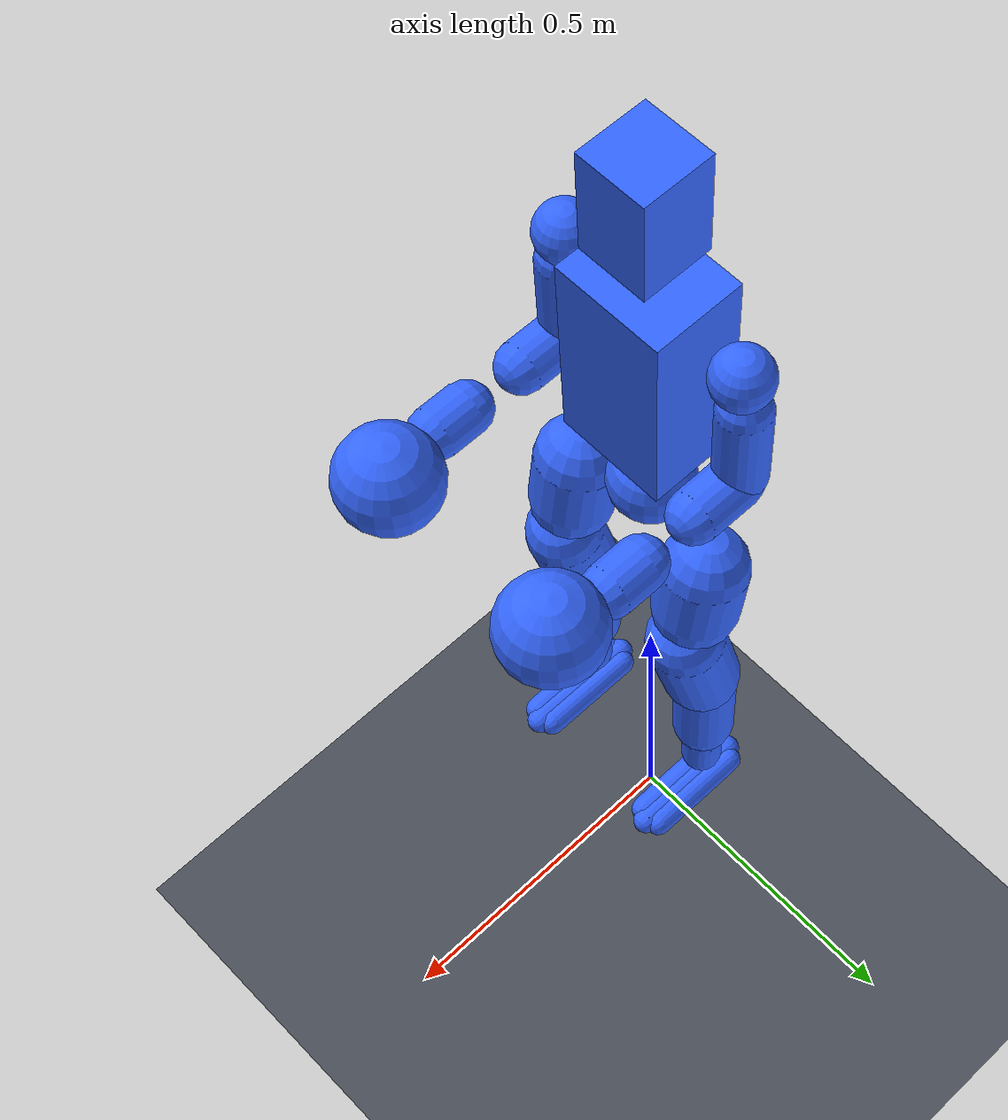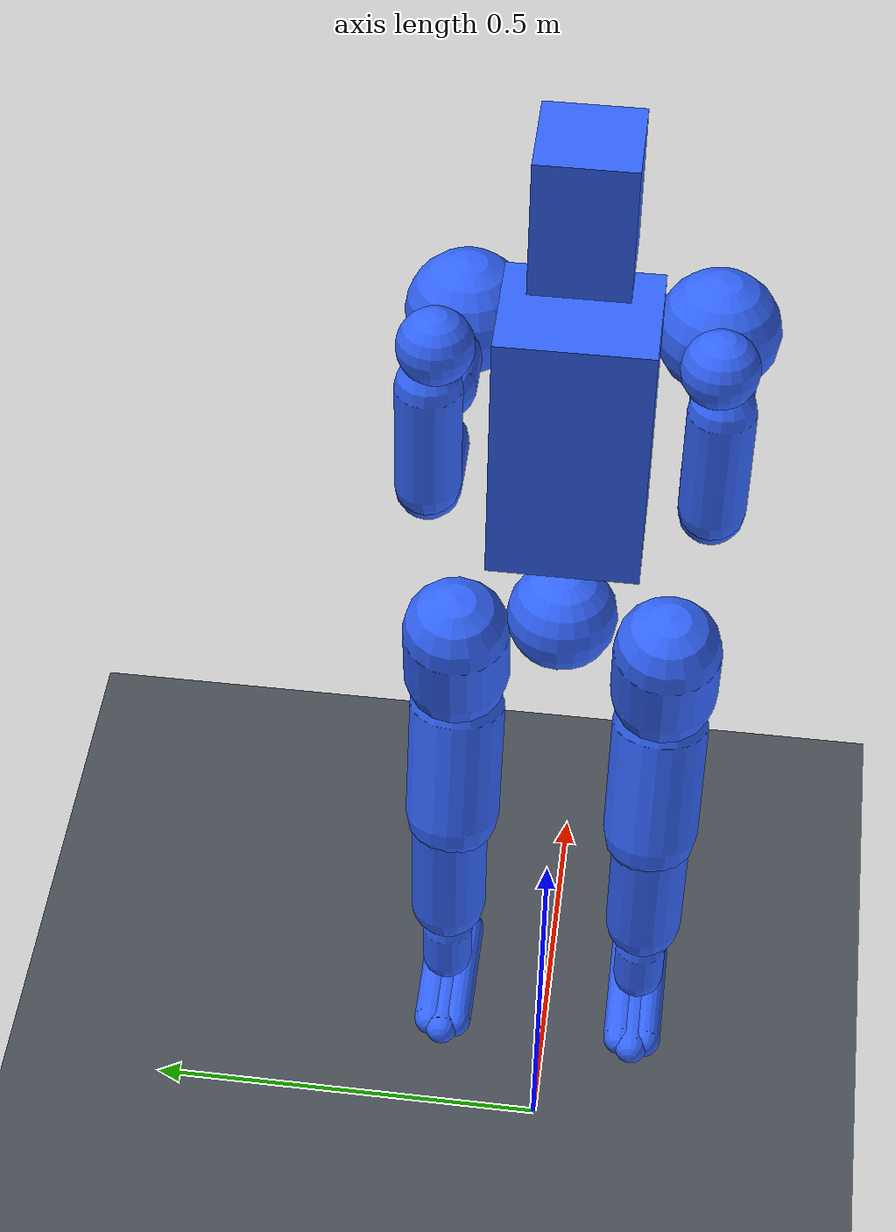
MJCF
<?xml version='1.0' encoding='utf-8'?>
<mujoco model="single_g1">
  <compiler angle="radian" autolimits="true" />
  <option timestep="0.0020833333" integrator="implicitfast" cone="pyramidal" impratio="1" />
  <default>
    <geom solimp="0.8 0.95 0.0004" solref="0.001 1" />
    <default class="g1">
      <geom condim="3" friction="0.75 0.005 0.0001" contype="0" conaffinity="0" margin="0.001" />
      <default class="robot">
        <geom contype="1" conaffinity="3" rgba="0.2 0.4 1.0 1" />
      </default>
    </default>
  </default>
  <asset>
    <texture type="skybox" builtin="gradient" rgb1="0.5 0.7 0.9" rgb2="0.1 0.15 0.25" width="256" height="256" />
    <texture name="grid" type="2d" builtin="checker" rgb1="0.25 0.27 0.30" rgb2="0.32 0.34 0.38" width="300" height="300" mark="edge" markrgb="0.5 0.5 0.5" />
    <material name="grid" texture="grid" texrepeat="12 12" texuniform="true" reflectance="0.1" />
  </asset>
  <worldbody>
    <light name="light" pos="0 0 6" dir="0 0 -1" diffuse="0.8 0.8 0.8" castshadow="false" />
    <geom name="floor" type="plane" pos="0 0 0" size="40 40 0.1" material="grid" contype="3" conaffinity="3" condim="3" friction="0.75 0.005 0.0001" />
    <body name="pelvis" pos="0 0 1.0" childclass="robot">
      <freejoint name="root" />
      <inertial pos="0 0 -0.07605" quat="1 0 -0.000399148 0" mass="3.813" diaginertia="0.010549 0.0093089 0.0079184" />
      <geom name="pelvis_collision" class="robot" type="sphere" size="0.06" pos="0 0 -0.07" />
      <body name="left_hip_pitch_link" pos="0 0.064452 -0.1027">
        <inertial pos="0.002741 0.047791 -0.02606" quat="0.954862 0.293964 0.0302556 0.030122" mass="1.35" diaginertia="0.00181517 0.00153422 0.00116212" />
        <joint name="left_hip_pitch_joint" type="hinge" pos="0 0 0" axis="0 1 0" range="-2.5307 2.8798" limited="true" actuatorfrcrange="-88 88" armature="0.010177520" stiffness="0" damping="0" frictionloss="0" solreflimit="0.005 1" solimplimit="0.99 0.9999 0.001" />
        <body name="left_hip_roll_link" pos="0 0.052 -0.030465" quat="0.996179 0 -0.0873386 0">
          <inertial pos="0.029812 -0.001045 -0.087934" quat="0.977808 -1.97119e-05 0.205576 -0.0403793" mass="1.52" diaginertia="0.00254986 0.00241169 0.00148755" />
          <joint name="left_hip_roll_joint" type="hinge" pos="0 0 0" axis="1 0 0" range="-0.5236 2.9671" limited="true" actuatorfrcrange="-88 88" armature="0.025101925" stiffness="0" damping="0" frictionloss="0" solreflimit="0.005 1" solimplimit="0.99 0.9999 0.001" />
          <geom name="left_hip_collision" class="robot" type="capsule" size="0.06" fromto="0.02 0 0 0.02 0 -0.08" />
          <body name="left_hip_yaw_link" pos="0.025001 0 -0.12412">
            <inertial pos="-0.057709 -0.010981 -0.15078" quat="0.600598 0.15832 0.223482 0.751181" mass="1.702" diaginertia="0.00776166 0.00717575 0.00160139" />
            <joint name="left_hip_yaw_joint" type="hinge" pos="0 0 0" axis="0 0 1" range="-2.7576 2.7576" limited="true" actuatorfrcrange="-88 88" armature="0.010177520" stiffness="0" damping="0" frictionloss="0" solreflimit="0.005 1" solimplimit="0.99 0.9999 0.001" />
            <geom name="left_thigh_collision" class="robot" type="capsule" size="0.055" fromto="-0.0 0 -0.03 -0.06 0 -0.17" />
            <body name="left_knee_link" pos="-0.078273 0.0021489 -0.17734" quat="0.996179 0 0.0873386 0">
              <inertial pos="0.005457 0.003964 -0.12074" quat="0.923418 -0.0327699 0.0158246 0.382067" mass="1.932" diaginertia="0.0113804 0.0112778 0.00146458" />
              <joint name="left_knee_joint" type="hinge" pos="0 0 0" axis="0 1 0" range="-0.087267 2.8798" limited="true" actuatorfrcrange="-139 139" armature="0.025101925" stiffness="0" damping="0" frictionloss="0" solreflimit="0.005 1" solimplimit="0.99 0.9999 0.001" />
              <geom name="left_shin_collision" class="robot" type="capsule" size="0.045" fromto="0.01 0 0 0.01 0 -0.15" />
              <geom name="left_linkage_brace_collision" class="robot" type="capsule" size="0.03" fromto="0.01 0 -0.2 0.01 0 -0.255" />
              <body name="left_ankle_pitch_link" pos="0 -9.4445e-05 -0.30001">
                <inertial pos="-0.007269 0 0.011137" quat="0.603053 0.369225 0.369225 0.603053" mass="0.074" diaginertia="1.89e-05 1.40805e-05 6.9195e-06" />
                <joint name="left_ankle_pitch_joint" type="hinge" pos="0 0 0" axis="0 1 0" range="-0.87267 0.5236" limited="true" actuatorfrcrange="-50 50" armature="0.00721945" stiffness="0" damping="0" frictionloss="0" solreflimit="0.005 1" solimplimit="0.99 0.9999 0.001" />
                <body name="left_ankle_roll_link" pos="0 0 -0.017558">
                  <inertial pos="0.026505 0 -0.016425" quat="-0.000481092 0.728482 -0.000618967 0.685065" mass="0.608" diaginertia="0.00167218 0.0016161 0.000217621" />
                  <joint name="left_ankle_roll_joint" type="hinge" pos="0 0 0" axis="1 0 0" range="-0.2618 0.2618" limited="true" actuatorfrcrange="-50 50" armature="0.00721945" stiffness="0" damping="0" frictionloss="0" solreflimit="0.005 1" solimplimit="0.99 0.9999 0.001" />
                  <geom name="left_foot0_collision" class="robot" type="capsule" size="0.02" fromto="-0.035 -0.015 -0.015 0.115 -0.015 -0.015" />
                  <geom name="left_foot1_collision" class="robot" type="capsule" size="0.02" fromto="-0.047 0 -0.015 0.126 0 -0.015" />
                  <geom name="left_foot2_collision" class="robot" type="capsule" size="0.02" fromto="-0.035 0.015 -0.015 0.115 0.015 -0.015" />
                </body>
              </body>
            </body>
          </body>
        </body>
      </body>
      <body name="right_hip_pitch_link" pos="0 -0.064452 -0.1027">
        <inertial pos="0.002741 -0.047791 -0.02606" quat="0.954862 -0.293964 0.0302556 -0.030122" mass="1.35" diaginertia="0.00181517 0.00153422 0.00116212" />
        <joint name="right_hip_pitch_joint" type="hinge" pos="0 0 0" axis="0 1 0" range="-2.5307 2.8798" limited="true" actuatorfrcrange="-88 88" armature="0.010177520" stiffness="0" damping="0" frictionloss="0" solreflimit="0.005 1" solimplimit="0.99 0.9999 0.001" />
        <body name="right_hip_roll_link" pos="0 -0.052 -0.030465" quat="0.996179 0 -0.0873386 0">
          <inertial pos="0.029812 0.001045 -0.087934" quat="0.977808 1.97119e-05 0.205576 0.0403793" mass="1.52" diaginertia="0.00254986 0.00241169 0.00148755" />
          <joint name="right_hip_roll_joint" type="hinge" pos="0 0 0" axis="1 0 0" range="-2.9671 0.5236" limited="true" actuatorfrcrange="-88 88" armature="0.025101925" stiffness="0" damping="0" frictionloss="0" solreflimit="0.005 1" solimplimit="0.99 0.9999 0.001" />
          <geom name="right_hip_collision" class="robot" type="capsule" size="0.06" fromto="0.02 0 0 0.02 0 -0.08" />
          <body name="right_hip_yaw_link" pos="0.025001 0 -0.12412">
            <inertial pos="-0.057709 0.010981 -0.15078" quat="0.751181 0.223482 0.15832 0.600598" mass="1.702" diaginertia="0.00776166 0.00717575 0.00160139" />
            <joint name="right_hip_yaw_joint" type="hinge" pos="0 0 0" axis="0 0 1" range="-2.7576 2.7576" limited="true" actuatorfrcrange="-88 88" armature="0.010177520" stiffness="0" damping="0" frictionloss="0" solreflimit="0.005 1" solimplimit="0.99 0.9999 0.001" />
            <geom name="right_thigh_collision" class="robot" type="capsule" size="0.055" fromto="-0.0 0 -0.03 -0.06 0 -0.17" />
            <body name="right_knee_link" pos="-0.078273 -0.0021489 -0.17734" quat="0.996179 0 0.0873386 0">
              <inertial pos="0.005457 -0.003964 -0.12074" quat="0.923439 0.0345276 0.0116333 -0.382012" mass="1.932" diaginertia="0.011374 0.0112843 0.00146452" />
              <joint name="right_knee_joint" type="hinge" pos="0 0 0" axis="0 1 0" range="-0.087267 2.8798" limited="true" actuatorfrcrange="-139 139" armature="0.025101925" stiffness="0" damping="0" frictionloss="0" solreflimit="0.005 1" solimplimit="0.99 0.9999 0.001" />
              <geom name="right_shin_collision" class="robot" type="capsule" size="0.045" fromto="0.01 0 0 0.01 0 -0.15" />
              <geom name="right_linkage_brace_collision" class="robot" type="capsule" size="0.03" fromto="0.01 0 -0.2 0.01 0 -0.255" />
              <body name="right_ankle_pitch_link" pos="0 9.4445e-05 -0.30001">
                <inertial pos="-0.007269 0 0.011137" quat="0.603053 0.369225 0.369225 0.603053" mass="0.074" diaginertia="1.89e-05 1.40805e-05 6.9195e-06" />
                <joint name="right_ankle_pitch_joint" type="hinge" pos="0 0 0" axis="0 1 0" range="-0.87267 0.5236" limited="true" actuatorfrcrange="-50 50" armature="0.00721945" stiffness="0" damping="0" frictionloss="0" solreflimit="0.005 1" solimplimit="0.99 0.9999 0.001" />
                <body name="right_ankle_roll_link" pos="0 0 -0.017558">
                  <inertial pos="0.026505 0 -0.016425" quat="0.000481092 0.728482 0.000618967 0.685065" mass="0.608" diaginertia="0.00167218 0.0016161 0.000217621" />
                  <joint name="right_ankle_roll_joint" type="hinge" pos="0 0 0" axis="1 0 0" range="-0.2618 0.2618" limited="true" actuatorfrcrange="-50 50" armature="0.00721945" stiffness="0" damping="0" frictionloss="0" solreflimit="0.005 1" solimplimit="0.99 0.9999 0.001" />
                  <geom name="right_foot0_collision" class="robot" type="capsule" size="0.02" fromto="-0.035 -0.015 -0.015 0.115 -0.015 -0.015" />
                  <geom name="right_foot1_collision" class="robot" type="capsule" size="0.02" fromto="-0.047 0 -0.015 0.126 0 -0.015" />
                  <geom name="right_foot2_collision" class="robot" type="capsule" size="0.02" fromto="-0.035 0.015 -0.015 0.115 0.015 -0.015" />
                </body>
              </body>
            </body>
          </body>
        </body>
      </body>
      <body name="waist_yaw_link">
        <inertial pos="0.003964 0 0.018769" quat="-0.0178291 0.628464 0.0282471 0.777121" mass="0.244" diaginertia="0.000158561 0.000124229 9.67669e-05" />
        <joint name="waist_yaw_joint" type="hinge" pos="0 0 0" axis="0 0 1" range="-2.618 2.618" limited="true" actuatorfrcrange="-88 88" armature="0.010177520" stiffness="0" damping="0" frictionloss="0" solreflimit="0.005 1" solimplimit="0.99 0.9999 0.001" />
        <body name="waist_roll_link" pos="-0.0039635 0 0.035">
          <inertial pos="0 -0.000236 0.010111" quat="0.99979 0.020492 0 0" mass="0.047" diaginertia="7.515e-06 6.40206e-06 3.98394e-06" />
          <joint name="waist_roll_joint" type="hinge" pos="0 0 0" axis="1 0 0" range="-0.52 0.52" limited="true" actuatorfrcrange="-50 50" armature="0.00721945" stiffness="0" damping="0" frictionloss="0" solreflimit="0.005 1" solimplimit="0.99 0.9999 0.001" />
          <body name="torso_link" pos="0 0 0.019">
            <inertial pos="0.00331658 0.000261533 0.179856" quat="0.999831 0.000376204 0.0179895 -0.00377704" mass="9.598" diaginertia="0.12407 0.111951 0.0325382" />
            <joint name="waist_pitch_joint" type="hinge" pos="0 0 0" axis="0 1 0" range="-0.52 0.52" limited="true" actuatorfrcrange="-50 50" armature="0.00721945" stiffness="0" damping="0" frictionloss="0" solreflimit="0.005 1" solimplimit="0.99 0.9999 0.001" />
            <geom name="torso_collision" class="robot" type="box" size="0.065 0.08 0.15" pos="0.01 0 0.14" />
            <body name="head_link" pos="0.015 0 0.43">
              <inertial pos="0 0 0" mass="0.1" diaginertia="0.00014400 0.00014400 0.00014400" />
              <geom name="head_collision" class="robot" type="box" size="0.05 0.05 0.075" pos="0 0 -0.015" />
            </body>
            <body name="left_shoulder_pitch_link" pos="0.0039563 0.10022 0.23778" quat="0.990264 0.139201 1.38722e-05 -9.86868e-05">
              <inertial pos="0 0.035892 -0.011628" quat="0.654152 0.0130458 -0.326267 0.68225" mass="0.718" diaginertia="0.000465864 0.000432842 0.000406394" />
              <joint name="left_shoulder_pitch_joint" type="hinge" pos="0 0 0" axis="0 1 0" range="-3.0892 2.6704" limited="true" actuatorfrcrange="-25 25" armature="0.003609725" stiffness="0" damping="0" frictionloss="0" solreflimit="0.005 1" solimplimit="0.99 0.9999 0.001" />
              <body name="left_shoulder_roll_link" pos="0 0.038 -0.013831" quat="0.990268 -0.139172 0 0">
                <inertial pos="-0.000227 0.00727 -0.063243" quat="0.701256 -0.0196223 -0.00710317 0.712604" mass="0.643" diaginertia="0.000691311 0.000618011 0.000388977" />
                <joint name="left_shoulder_roll_joint" type="hinge" pos="0 0 0" axis="1 0 0" range="-1.5882 2.2515" limited="true" actuatorfrcrange="-25 25" armature="0.003609725" stiffness="0" damping="0" frictionloss="0" solreflimit="0.005 1" solimplimit="0.99 0.9999 0.001" />
                <geom name="left_shoulder_roll_collision" class="robot" type="sphere" size="0.04" />
                <body name="left_shoulder_yaw_link" pos="0 0.00624 -0.1032">
                  <inertial pos="0.010773 -0.002949 -0.072009" quat="0.716879 -0.0964829 -0.0679942 0.687134" mass="1.835" diaginertia="0.00265467 0.00258042 0.00100165" />
                  <joint name="left_shoulder_yaw_joint" type="hinge" pos="0 0 0" axis="0 0 1" range="-2.618 2.618" limited="true" actuatorfrcrange="-25 25" armature="0.003609725" stiffness="0" damping="0" frictionloss="0" solreflimit="0.005 1" solimplimit="0.99 0.9999 0.001" />
                  <geom name="left_shoulder_yaw_collision" class="robot" type="capsule" size="0.035" fromto="0 0 -0.08 0 0 0.05" />
                  <body name="left_elbow_link" pos="0.015783 0 -0.080518">
                    <inertial pos="0.064956 0.004454 -0.010062" quat="0.541765 0.636132 0.388821 0.388129" mass="1.5" diaginertia="0.00110759 0.00105403 0.000648382" />
                    <joint name="left_elbow_joint" type="hinge" pos="0 0 0" axis="0 1 0" range="-1.0472 2.0944" limited="true" actuatorfrcrange="-25 25" armature="0.003609725" stiffness="0" damping="0" frictionloss="0" solreflimit="0.005 1" solimplimit="0.99 0.9999 0.001" />
                    <geom name="left_elbow_yaw_collision" class="robot" type="capsule" size="0.035" fromto="-0.01 0 -0.01 0.06 0 -0.01" />
                    <body name="left_wrist_roll_link" pos="0.1 0.00188791 -0.01">
                      <inertial pos="0.0171394 0.000537591 4.8864e-07" quat="0.575338 0.411667 -0.574906 0.411094" mass="0.085445" diaginertia="5.48211e-05 4.96646e-05 3.57798e-05" />
                      <body name="left_wrist_pitch_link" pos="0.038 0 0">
                        <inertial pos="0.0229999 -0.00111685 -0.00111658" quat="0.249998 0.661363 0.293036 0.643608" mass="1.21012" diaginertia="0.00107588 0.00107468 0.00041162" />
                        <geom name="left_wrist_collision" class="robot" type="capsule" size="0.035" fromto="0.01 0 0 0.06 0 0" />
                        <body name="left_wrist_yaw_link" pos="0.046 0 0">
                          <inertial pos="0.0708244 0.000191745 0.00161742" quat="0.510571 0.526295 0.468078 0.493188" mass="0.63644" diaginertia="0.00161528 0.00139998 0.000368915" />
                          <geom name="left_hand_collision" class="robot" type="sphere" size="0.07" pos="0.095 -0.01 0" rgba="0.2 0.4 1.0 1" />
                        </body>
                      </body>
                    </body>
                  </body>
                </body>
              </body>
            </body>
            <body name="right_shoulder_pitch_link" pos="0.0039563 -0.10021 0.23778" quat="0.990264 -0.139201 1.38722e-05 9.86868e-05">
              <inertial pos="0 -0.035892 -0.011628" quat="0.68225 -0.326267 0.0130458 0.654152" mass="0.718" diaginertia="0.000465864 0.000432842 0.000406394" />
              <joint name="right_shoulder_pitch_joint" type="hinge" pos="0 0 0" axis="0 1 0" range="-3.0892 2.6704" limited="true" actuatorfrcrange="-25 25" armature="0.003609725" stiffness="0" damping="0" frictionloss="0" solreflimit="0.005 1" solimplimit="0.99 0.9999 0.001" />
              <body name="right_shoulder_roll_link" pos="0 -0.038 -0.013831" quat="0.990268 0.139172 0 0">
                <inertial pos="-0.000227 -0.00727 -0.063243" quat="0.712604 -0.00710317 -0.0196223 0.701256" mass="0.643" diaginertia="0.000691311 0.000618011 0.000388977" />
                <joint name="right_shoulder_roll_joint" type="hinge" pos="0 0 0" axis="1 0 0" range="-2.2515 1.5882" limited="true" actuatorfrcrange="-25 25" armature="0.003609725" stiffness="0" damping="0" frictionloss="0" solreflimit="0.005 1" solimplimit="0.99 0.9999 0.001" />
                <geom name="right_shoulder_roll_collision" class="robot" type="sphere" size="0.04" />
                <body name="right_shoulder_yaw_link" pos="0 -0.00624 -0.1032">
                  <inertial pos="0.010773 0.002949 -0.072009" quat="0.687134 -0.0679942 -0.0964829 0.716879" mass="1.835" diaginertia="0.00265467 0.00258042 0.00100165" />
                  <joint name="right_shoulder_yaw_joint" type="hinge" pos="0 0 0" axis="0 0 1" range="-2.618 2.618" limited="true" actuatorfrcrange="-25 25" armature="0.003609725" stiffness="0" damping="0" frictionloss="0" solreflimit="0.005 1" solimplimit="0.99 0.9999 0.001" />
                  <geom name="right_shoulder_yaw_collision" class="robot" type="capsule" size="0.035" fromto="0 0 -0.08 0 0 0.05" />
                  <body name="right_elbow_link" pos="0.015783 0 -0.080518">
                    <inertial pos="0.064956 -0.004454 -0.010062" quat="0.388129 0.388821 0.636132 0.541765" mass="1.5" diaginertia="0.00110759 0.00105403 0.000648382" />
                    <joint name="right_elbow_joint" type="hinge" pos="0 0 0" axis="0 1 0" range="-1.0472 2.0944" limited="true" actuatorfrcrange="-25 25" armature="0.003609725" stiffness="0" damping="0" frictionloss="0" solreflimit="0.005 1" solimplimit="0.99 0.9999 0.001" />
                    <geom name="right_elbow_yaw_collision" class="robot" type="capsule" size="0.035" fromto="-0.01 0 -0.01 0.06 0 -0.01" />
                    <body name="right_wrist_roll_link" pos="0.1 -0.00188791 -0.01">
                      <inertial pos="0.0171394 -0.000537591 4.8864e-07" quat="0.411667 0.575338 -0.411094 0.574906" mass="0.085445" diaginertia="5.48211e-05 4.96646e-05 3.57798e-05" />
                      <body name="right_wrist_pitch_link" pos="0.038 0 0">
                        <inertial pos="0.0229999 0.00111685 -0.00111658" quat="0.643608 0.293036 0.661363 0.249998" mass="1.21012" diaginertia="0.00107588 0.00107468 0.00041162" />
                        <geom name="right_wrist_collision" class="robot" type="capsule" size="0.035" fromto="0.01 0 0 0.06 0 0" />
                        <body name="right_wrist_yaw_link" pos="0.046 0 0">
                          <inertial pos="0.0708244 -0.000191745 0.00161742" quat="0.493188 0.468078 0.526295 0.510571" mass="0.63644" diaginertia="0.00161528 0.00139998 0.000368915" />
                          <geom name="right_hand_collision" class="robot" type="sphere" size="0.07" pos="0.095 0.01 0" rgba="0.2 0.4 1.0 1" />
                        </body>
                      </body>
                    </body>
                  </body>
                </body>
              </body>
            </body>
          </body>
        </body>
      </body>
    </body>
    <!-- SCENE -->
  </worldbody>
  <!-- CONTACT -->
  <actuator>
    <position name="left_hip_pitch_joint" joint="left_hip_pitch_joint" kp="40.179238471" kv="2.557889765" forcerange="-88 88" ctrllimited="false" />
    <position name="left_hip_roll_joint" joint="left_hip_roll_joint" kp="99.098427777" kv="6.308801853" forcerange="-88 88" ctrllimited="false" />
    <position name="left_hip_yaw_joint" joint="left_hip_yaw_joint" kp="40.179238471" kv="2.557889765" forcerange="-88 88" ctrllimited="false" />
    <position name="left_knee_joint" joint="left_knee_joint" kp="99.098427777" kv="6.308801853" forcerange="-139 139" ctrllimited="false" />
    <position name="left_ankle_pitch_joint" joint="left_ankle_pitch_joint" kp="28.501246196" kv="1.814445686" forcerange="-50 50" ctrllimited="false" />
    <position name="left_ankle_roll_joint" joint="left_ankle_roll_joint" kp="28.501246196" kv="1.814445686" forcerange="-50 50" ctrllimited="false" />
    <position name="right_hip_pitch_joint" joint="right_hip_pitch_joint" kp="40.179238471" kv="2.557889765" forcerange="-88 88" ctrllimited="false" />
    <position name="right_hip_roll_joint" joint="right_hip_roll_joint" kp="99.098427777" kv="6.308801853" forcerange="-88 88" ctrllimited="false" />
    <position name="right_hip_yaw_joint" joint="right_hip_yaw_joint" kp="40.179238471" kv="2.557889765" forcerange="-88 88" ctrllimited="false" />
    <position name="right_knee_joint" joint="right_knee_joint" kp="99.098427777" kv="6.308801853" forcerange="-139 139" ctrllimited="false" />
    <position name="right_ankle_pitch_joint" joint="right_ankle_pitch_joint" kp="28.501246196" kv="1.814445686" forcerange="-50 50" ctrllimited="false" />
    <position name="right_ankle_roll_joint" joint="right_ankle_roll_joint" kp="28.501246196" kv="1.814445686" forcerange="-50 50" ctrllimited="false" />
    <position name="waist_yaw_joint" joint="waist_yaw_joint" kp="40.179238471" kv="2.557889765" forcerange="-88 88" ctrllimited="false" />
    <position name="waist_roll_joint" joint="waist_roll_joint" kp="28.501246196" kv="1.814445686" forcerange="-50 50" ctrllimited="false" />
    <position name="waist_pitch_joint" joint="waist_pitch_joint" kp="28.501246196" kv="1.814445686" forcerange="-50 50" ctrllimited="false" />
    <position name="left_shoulder_pitch_joint" joint="left_shoulder_pitch_joint" kp="14.250623098" kv="0.907222843" forcerange="-25 25" ctrllimited="false" />
    <position name="left_shoulder_roll_joint" joint="left_shoulder_roll_joint" kp="14.25062309860" kv="0.907222843" forcerange="-25 25" ctrllimited="false" />
    <position name="left_shoulder_yaw_joint" joint="left_shoulder_yaw_joint" kp="14.250623098" kv="0.907222843" forcerange="-25 25" ctrllimited="false" />
    <position name="left_elbow_joint" joint="left_elbow_joint" kp="14.250623098" kv="0.907222843" forcerange="-25 25" ctrllimited="false" />
    <position name="right_shoulder_pitch_joint" joint="right_shoulder_pitch_joint" kp="14.250623098" kv="0.907222843" forcerange="-25 25" ctrllimited="false" />
    <position name="right_shoulder_roll_joint" joint="right_shoulder_roll_joint" kp="14.250623098" kv="0.907222843" forcerange="-25 25" ctrllimited="false" />
    <position name="right_shoulder_yaw_joint" joint="right_shoulder_yaw_joint" kp="14.250623098" kv="0.907222843" forcerange="-25 25" ctrllimited="false" />
    <position name="right_elbow_joint" joint="right_elbow_joint" kp="14.250623098" kv="0.907222843" forcerange="-25 25" ctrllimited="false" />
  </actuator>
  <custom>
    <numeric name="pd_kp" data="40.179238471 99.098427777 40.179238471 99.098427777 28.501246196 28.501246196 40.179238471 99.098427777 40.179238471 99.098427777 28.501246196 28.501246196 40.179238471 28.501246196 28.501246196 14.250623098 14.25062309860 14.250623098 14.250623098 14.250623098 14.250623098 14.250623098 14.250623098" />
    <numeric name="pd_kv" data="2.557889765 6.308801853 2.557889765 6.308801853 1.814445686 1.814445686 2.557889765 6.308801853 2.557889765 6.308801853 1.814445686 1.814445686 2.557889765 1.814445686 1.814445686 0.907222843 0.907222843 0.907222843 0.907222843 0.907222843 0.907222843 0.907222843 0.907222843" />
  </custom>
</mujoco>
